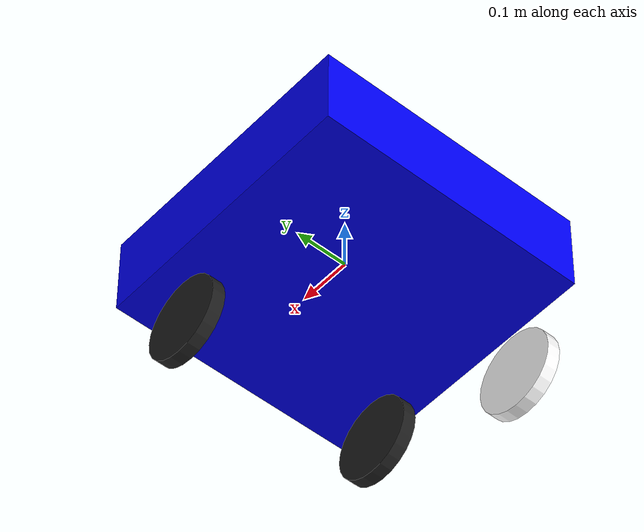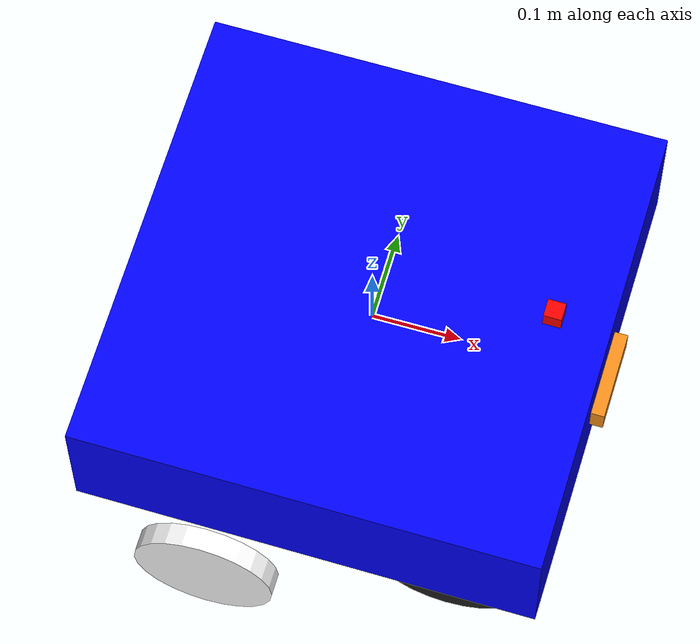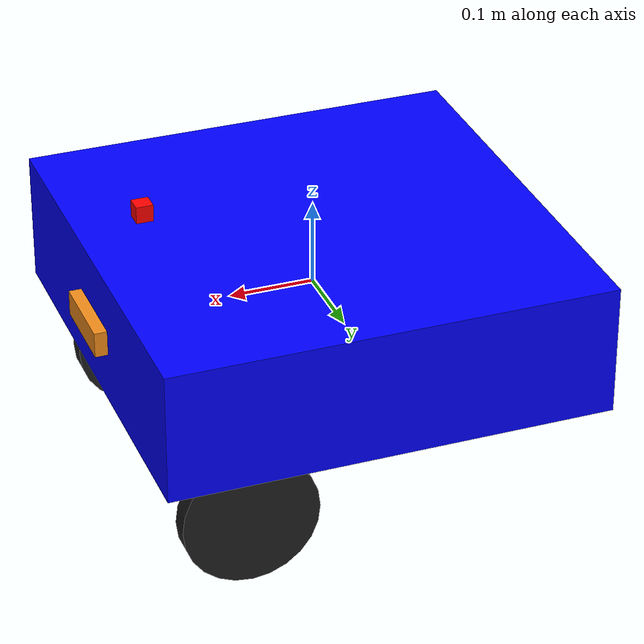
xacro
<?xml version='1.0'?>

<robot name="diffrobot" xmlns:xacro="http://www.ros.org/wiki/xacro">

    <xacro:include filename="$(find diffrobot_description)/urdf/diffrobot.gazebo"/>

    <link name="base_footprint"/>

  <joint name="base_footprint_joint" type="fixed">
      <parent link="base_footprint"/>
      <child link="base_link"/>
  </joint>

    <link name="base_link">
        <inertial>
            <origin xyz="0.0 0.0 0.145" rpy="0.0 0.0 0.0"/>
            <mass value="15.0"/>
            <inertia ixx="0.0" ixy="0.0" ixz="0.0" iyy="0.0" iyz="0.0" izz="0.0"/>
        </inertial>
        <visual name="base_link_visual">
            <origin xyz="0.0 0.0 0.0" rpy="0.0 0.0 0.0"/>
            <geometry>
                <box size="0.52 0.52 0.155"/>
            </geometry>
            <material name="">
                <color rgba="0.0 0.0 1.0 1.0"/>
                <texture filename=""/>
            </material>
        </visual>
        <collision>
            <origin xyz="0.0 0.0 0.0" rpy="0.0 0.0 0.0"/>
            <geometry>
                <box size="0.52 0.52 0.155"/>
            </geometry>
        </collision>
    </link>

    <link name="left_wheel">
       <inertial>
            <origin xyz="0.0 0.0 0.0" rpy="0.0 0.0 0.0"/>
            <mass value="15.0"/>
            <inertia ixx="0.1" ixy="0.0" ixz="0.0" iyy="0.1" iyz="0.0" izz="0.1"/>
        </inertial>
        <visual name="left_wheel_visual">
           <origin xyz="0.0 0.0 0.0" rpy="0.0 0.0 0.0"/>
            <geometry>
                <cylinder radius="0.08" length="0.025"/>
            </geometry>
        </visual>
        <collision name='left_wheel_collision'>
            <origin xyz="0.0 0.0 0.0" rpy="0.0 0.0 0.0"/>
            <geometry>
                <cylinder radius="0.08" length="0.025"/>
            </geometry>
        </collision>
    </link>

    <link name="right_wheel">
        <inertial>
            <origin xyz="0.0 0.0 0.0" rpy="0.0 0.0 0.0"/>
            <mass value="15.0"/>
            <inertia ixx="0.1" ixy="0.0" ixz="0.0" iyy="0.1" iyz="0.0" izz="0.1"/>
        </inertial>
        <visual name="right_wheel_visual">
            <origin xyz="0.0 0.0 0.0" rpy="0.0 0.0 0.0"/>
            <geometry>
                <cylinder radius="0.08" length="0.025"/>
            </geometry>
        </visual>
        <collision name='right_wheel_collision'>
            <origin xyz="0.0 0.0 0.0" rpy="0.0 0.0 0.0"/>
            <geometry>
                <cylinder radius="0.08" length="0.025"/>
            </geometry>
        </collision>
    </link>

    <joint name="wheel_left_joint" type="continuous">
         <origin xyz="0.15 0.20 -0.157" rpy="0.0 1.5705 1.5705"/>
        <parent link="base_link"/>
        <child link="left_wheel"/>
        <axis xyz="0.0 0.0 1.0"/>

    </joint>

    <joint name="wheel_right_joint" type="continuous">
        <origin xyz="0.15 -0.20 -0.157" rpy="0.0 1.5705 1.5705"/>
        <parent link="base_link"/>
        <child link="right_wheel"/>
        <axis xyz="0.0 0.0 1.0"/>

    </joint>

    <link name="front_caster">
        <inertial>
            <origin xyz="0.0 0.0 0.0" rpy="0.0 1.5707 1.5707"/>
            <mass value="15.0"/>
            <inertia ixx="0.1" ixy="0.0" ixz="0.0" iyy="0.1" iyz="0.0" izz="0.1"/>
        </inertial>
        <visual name="front_caster_visual">
            <origin xyz="0.0 0.0 0.0" rpy="0.0 0.0 0.0"/>
            <geometry>
                <cylinder radius="0.00" length="0.025"/>
            </geometry>
            <material name="">
                <color rgba="1.0 1.0 1.0 1.0"/>
                <texture filename=""/>
            </material>
        </visual>
        <collision>
             <origin xyz="0.0 0.0 0.0" rpy="0.0 0.0 0.0"/>
            <geometry>
                <cylinder radius="0.08" length="0.025"/>
            </geometry>
        </collision>
    </link>

    <joint name="front_caster_joint" type="fixed">
        <origin xyz="-0.11 0.275 -0.157" rpy="0.0 1.5705 1.5705"/>
        <parent link="base_link"/>
        <child link="front_caster"/>
        <axis xyz="0.0 0.0 1.0"/>
    </joint>

 <link name="back_caster">
       <inertial>
            <origin xyz="0.0 0.0 0.0" rpy="0.0 0.0 0.0"/>
            <mass value="15.0"/>
            <inertia ixx="0.1" ixy="0.0" ixz="0.0" iyy="0.1" iyz="0.0" izz="0.1"/>
        </inertial>
        <visual name="back_caster_visual">
            <origin xyz="0.0 0.0 0.0" rpy="0.0 0.0 0.0"/>
            <geometry>
                <cylinder radius="0.08" length="0.025"/>
            </geometry>
            <material name="">
                <color rgba="1.0 1.0 1.0 1.0"/>
                <texture filename=""/>
            </material>
        </visual>
        <collision>
           <origin xyz="0.0 0.0 0.0" rpy="0.0 0.0 0.0"/>
            <geometry>
                <cylinder radius="0.08" length="0.025"/>
            </geometry>
        </collision>
    </link>

    <joint name="back_caster_joint" type="fixed">
       <origin xyz="-0.11 -0.275 -0.157" rpy="0.0 1.5705 1.5705"/>
        <parent link="base_link"/>
        <child link="back_caster"/>
        <axis xyz="0.0 0.0 0.0"/>
    </joint>

    <link name="lidar_link">
        <inertial>
            <origin xyz="0.0 0.0 0.0" rpy="0.0 0.0 0.0"/>
            <mass value="0.1"/>
            <inertia ixx="0.0" ixy="0.0" ixz="0.0" iyy="0.0" iyz="0.0" izz="0.0"/>
        </inertial>
        <visual name="lidar_link_visual">
            <origin xyz="0.0 0.0 0.0" rpy="0.0 0.0 0.0"/>
            <geometry>
                <box size="0.02 0.02 0.02"/>
            </geometry>
            <material name="">
                <color rgba="1.0 0.0 0.0 1.0"/>
                <texture filename=""/>
            </material>
        </visual>
        <collision>
            <origin xyz="0.0 0.0 0.0" rpy="0.0 0.0 0.0"/>
            <geometry>
                <box size="0.1 0.1 0.1"/>
            </geometry>
        </collision>
    </link>

    <joint name="lidar_joint" type="fixed">
       <origin xyz="0.20 0.0 0.13" rpy="0.0 0.0 0.0"/>
        <parent link="base_link"/>
        <child link="lidar_link"/>
    </joint>

    <link name="laser">

    </link>

    <joint name="laser_data_joint" type="fixed">
        <origin xyz="0.0 0.0 0.0" rpy="0.0 0.0 -1.5708"/>
        <parent link="lidar_link"/>
        <child link="laser"/>
    </joint>

    <link name="imu_link">
        <collision>
        <origin xyz="0 0 0.1" rpy="0 0 0"/>
        <geometry>
            <box size="0.02 0.02 0.02"/>
        </geometry>
        </collision>

        <visual>
        <origin xyz="0.26 0 0" rpy="0 0 0"/>
        <geometry>
             <box size="0.03 0.1 0.03"/>
        </geometry>
        <material name="orange"/>
        </visual>

        <inertial>
        <origin xyz="0 0 1" rpy="0 0 0"/>
        <mass value="1"/>
        <inertia
            ixx="1.0" ixy="0.0" ixz="0.0"
            iyy="1.0" iyz="0.0"
            izz="1.0"/>
        </inertial>
    </link>
    <joint name="imu_joint" type="fixed">
        <origin xyz="0.0 0.0 0.0" rpy="0.0 0.0 0.0"/>
        <parent link="base_link"/>
        <child link="imu_link"/>
    </joint>

</robot>
